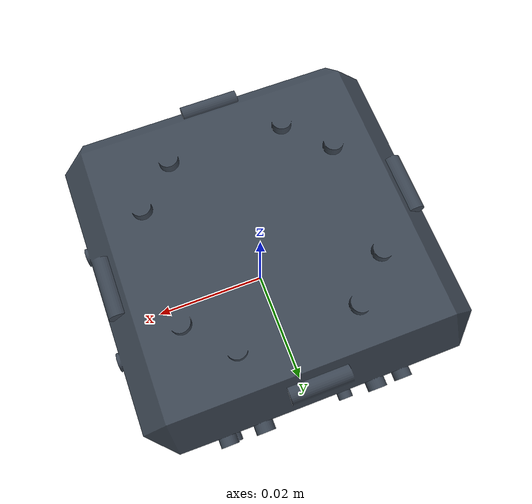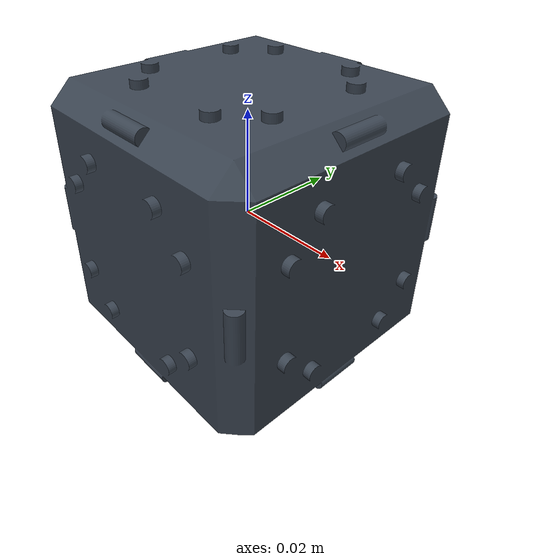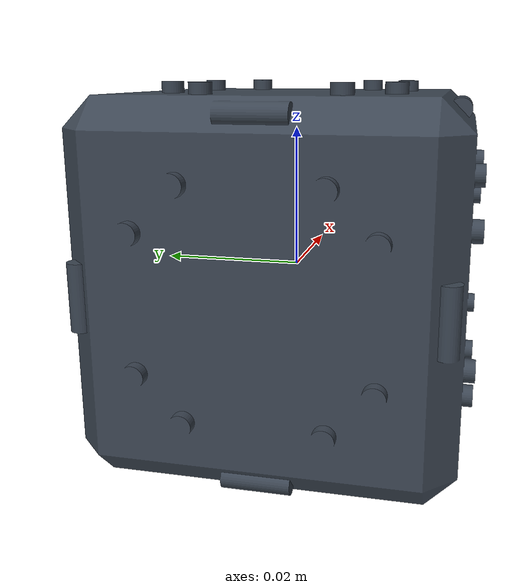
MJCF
<mujoco model="mblocks_3d_cad_proxy">
  <compiler angle="radian" meshdir="../meshes" />

  <asset>
    <material name="shell_material" rgba="0.23 0.27 0.32 1" metallic="0.32" roughness="0.42" />
    <material name="carrier_material" rgba="0.70 0.72 0.76 1" metallic="0.55" roughness="0.32" />
    <material name="flywheel_material" rgba="0.74 0.43 0.18 1" metallic="0.62" roughness="0.30" />
    <mesh name="base_link_mesh" file="base_link.stl" scale="0.001 0.001 0.001" />
    <mesh name="actuator_carrier_mesh" file="actuator_carrier_link_1.stl" scale="0.001 0.001 0.001" />
    <mesh name="flywheel_mesh" file="flywheel_link_1.stl" scale="0.001 0.001 0.001" />
  </asset>

  <default>
    <default class="visual">
      <geom type="mesh" contype="0" conaffinity="0" group="1" density="0" />
    </default>
    <default class="module_contact">
      <geom type="box" contype="1" conaffinity="1" condim="4" group="3"
            friction="0.9 0.01 0.0001" solref="0.006 1"
            solimp="0.95 0.99 0.001" rgba="0.22 0.50 0.82 0.25" density="0" />
    </default>
  </default>

  <worldbody>
    <body name="base_link">
      <inertial pos="0 0 0" mass="0.129"
                fullinertia="0.00005375 0.00005375 0.00005375 0 0 0" />
      <geom name="base_visual" class="visual" mesh="base_link_mesh" material="shell_material" />
      <geom name="base_collision_proxy" class="module_contact" size="0.025 0.025 0.025" />

      <body name="actuator_carrier_link_1">
        <inertial pos="0 0 0" mass="0.001"
                  fullinertia="0.0000001 0.0000001 0.0000001 0 0 0" />
        <geom name="carrier_visual" class="visual" mesh="actuator_carrier_mesh"
              material="carrier_material" />

        <body name="flywheel_link_1">
          <joint name="flywheel_joint" type="hinge"
                 axis="0 1 0" damping="0.000001" />
          <inertial pos="0 0 0" mass="0.020"
                    fullinertia="0.0000043 0.0000084 0.0000043 0 0 0" />
          <geom name="flywheel_visual" class="visual" mesh="flywheel_mesh"
                material="flywheel_material" />
        </body>
      </body>
    </body>
  </worldbody>
</mujoco>
